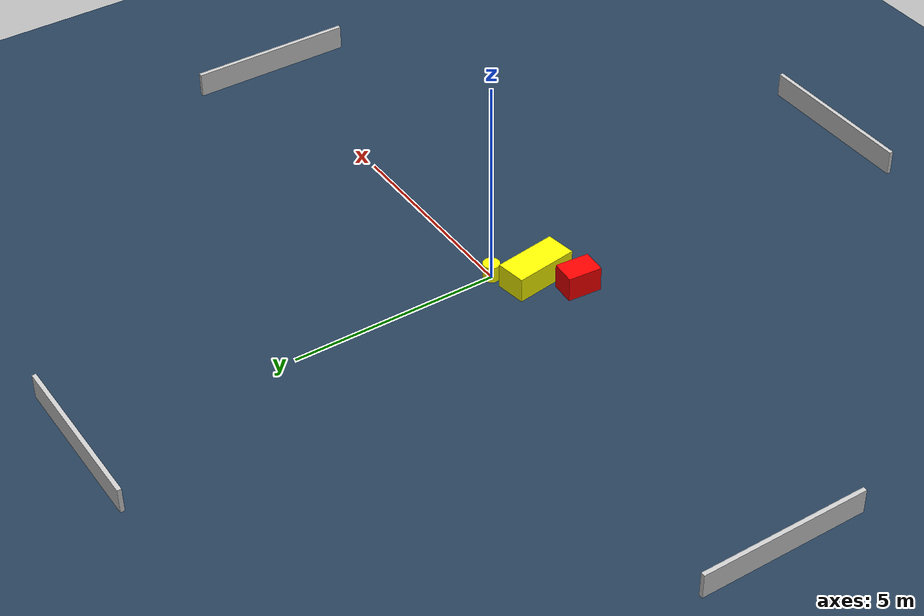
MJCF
<?xml version="1.0" ?>
<mujoco model="generated_environment">
  <option timestep="0.01" integrator="RK4" cone="elliptic"/>
  <default>
    <geom density="1"/>
  </default>
  <asset>
    <texture builtin="gradient" height="3072" name="skybox" rgb1="0.3 0.5 0.7" rgb2="0 0 0" type="skybox" width="512"/>
    <texture builtin="checker" height="300" name="groundplane" rgb1="0.2 0.3 0.4" rgb2="0.1 0.2 0.3" type="2d" width="300"/>
    <material name="groundplane" reflectance="0.2" texrepeat="5 5" texture="groundplane"/>
  </asset>
  <worldbody>
    <light dir="0 0 -1" directional="true" pos="0 0 1.5"/>
    <geom condim="3" friction="0.5 0.005 0.001" material="groundplane" name="floor" pos="0 0 0" size="0 0 0.05" type="plane"/>
    <body name="walls">
      <geom name="wall_1" condim="4" pos="-10.0 0.0 0.3" rgba="0.800000011920929 0.800000011920929 0.800000011920929 1.0" size="0.05 2.0 0.3" type="box"/>
      <geom name="wall_2" condim="4" pos="10.0 0.0 0.3" rgba="0.800000011920929 0.800000011920929 0.800000011920929 1.0" size="0.05 2.0 0.3" type="box"/>
      <geom name="wall_3" condim="4" pos="0.0 -10.0 0.3" rgba="0.800000011920929 0.800000011920929 0.800000011920929 1.0" size="2.0 0.05 0.3" type="box"/>
      <geom name="wall_4" condim="4" pos="0.0 10.0 0.3" rgba="0.800000011920929 0.800000011920929 0.800000011920929 1.0" size="2.0 0.05 0.3" type="box"/>
    </body>
    <body name="robot">
      <joint name="joint_x" type="slide" pos="0 0 0" axis="1 0 0"/>
      <joint name="joint_y" type="slide" pos="0 0 0" axis="0 1 0"/>
      <geom name="robot" type="cylinder" pos="0.0 0.0 0.2" size="0.2 0.2 0.0" mass="5.0" friction="1.0 0.005 0.0001" condim="4" rgba="1.0 1.0 0.0 1.0"/>
    </body>
    <body name="obstacle_1_movable">
      <geom name="obstacle_1_movable" condim="4" pos="-0.605503574384258 -0.773111109567117 0.3" euler="0 0 188.33199010151029" friction="0.0 0.005 0.001" rgba="1.0 1.0 0.0 1.0" size="0.36279056952700695 0.7636135264691442 0.3" type="box" mass="0.1"/>
      <joint type="free"/>
    </body>
    <body name="obstacle_2_static">
      <geom name="obstacle_2_static" condim="4" pos="-1.3762519650957807 -1.378993907279937 0.3" euler="0 0 85.52984903475499" friction="0.0 0.005 0.001" rgba="1.0 0.0 0.0 1.0" size="0.4077934272156848 0.2899926083307646 0.3" type="box"/>
    </body>
  </worldbody>
  <actuator>
    <motor name="actuator_x" joint="joint_x" gear="1" ctrlrange="-1 1"/>
    <motor name="actuator_y" joint="joint_y" gear="1" ctrlrange="-1 1"/>
  </actuator>
</mujoco>
